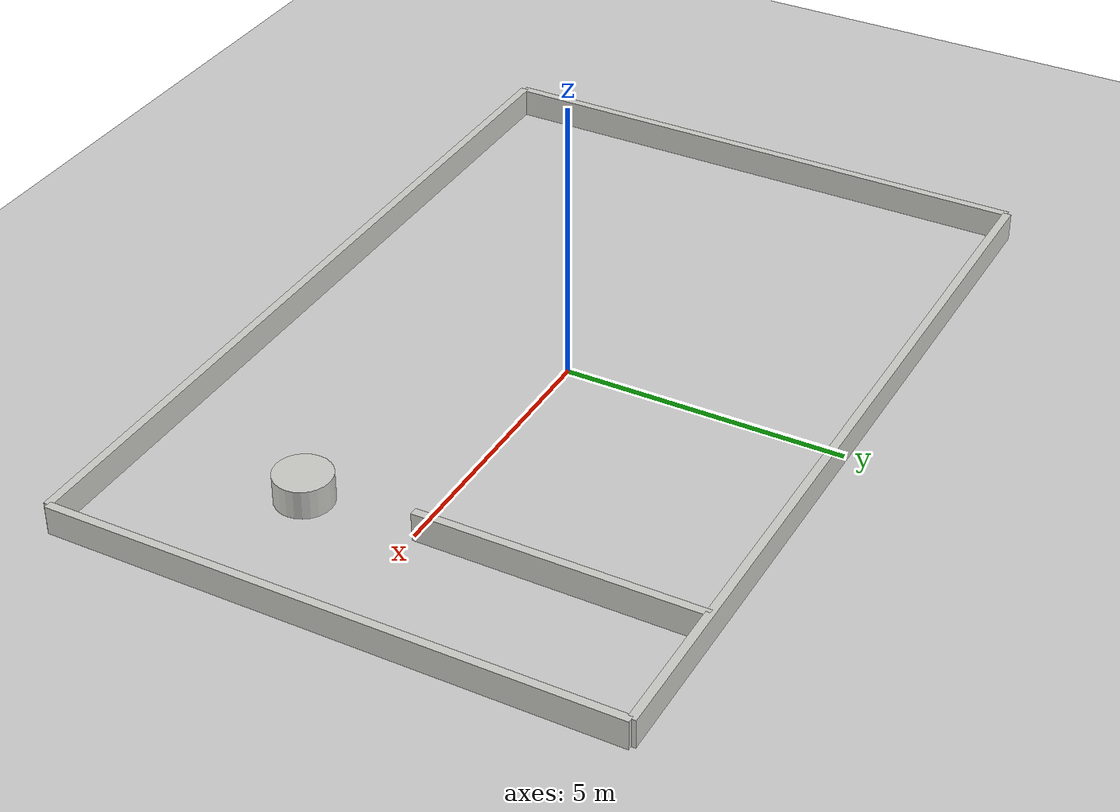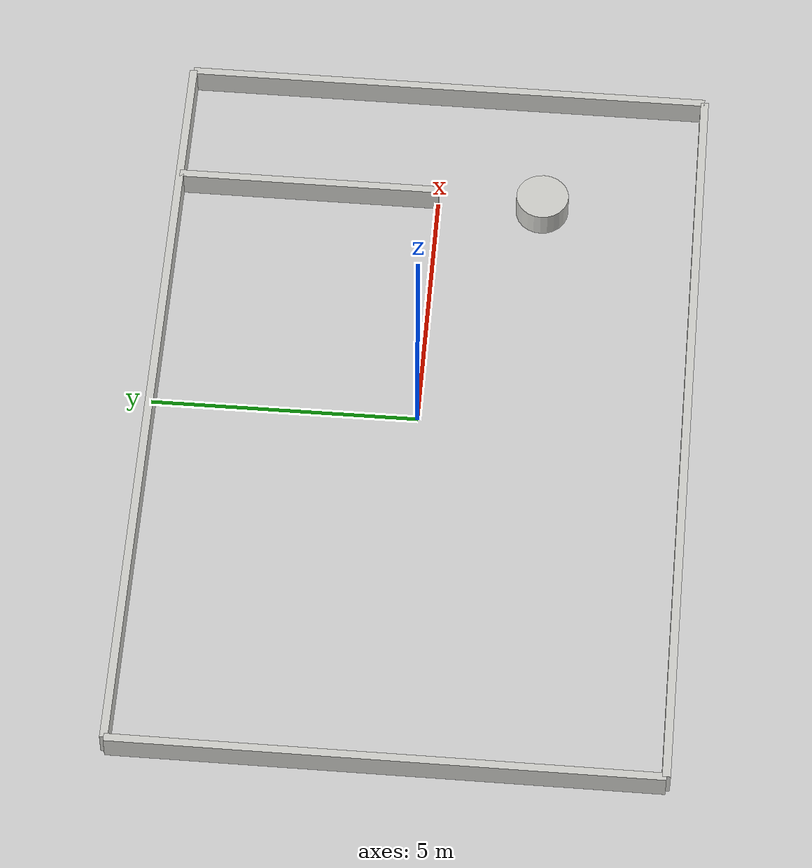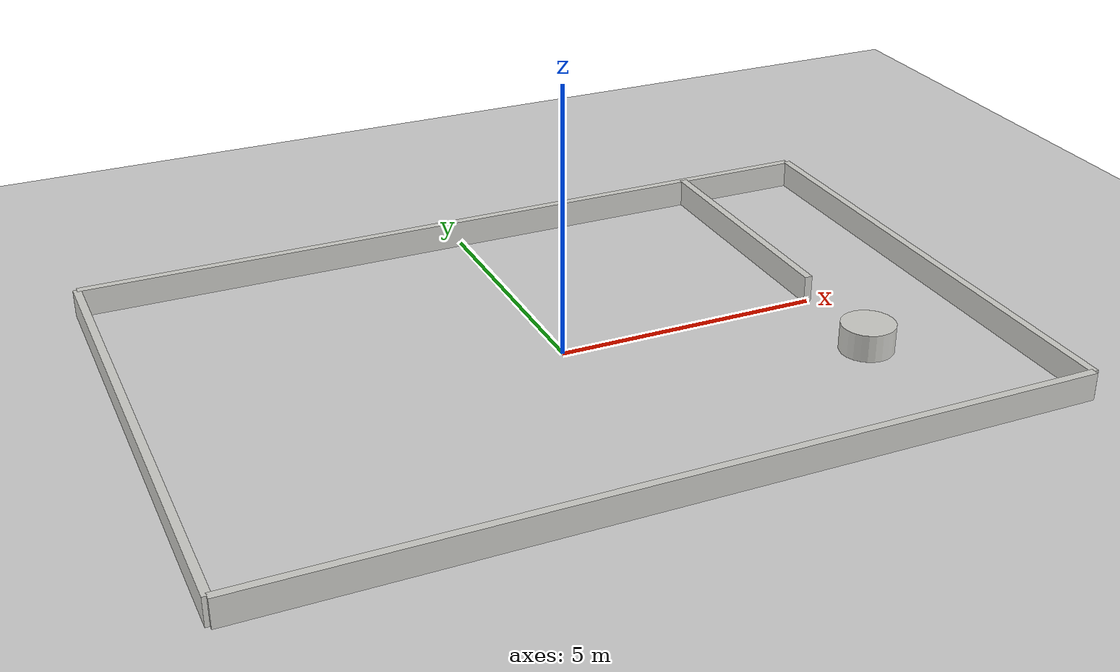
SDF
<?xml version="1.0"?>
<sdf version="1.4">
<world name="rectangle_room">

  <include>
    <uri>model://sun</uri>
  </include>

  <gui>
    <camera name='main'>
      <pose>14.3 6.8 25.7 0 1.05 -2.77</pose>
    </camera>
  </gui>

  <model name="ground_plane">
    <static>true</static>
    <link name="link">
      <collision name="collision">
        <geometry>
          <plane>
            <normal>0 0 1</normal>
            <size>150 150</size>
          </plane>
        </geometry>
        <surface>
          <friction>
            <ode>
              <mu>100</mu>
              <mu2>50</mu2>
            </ode>
          </friction>
        </surface>
      </collision>
      <visual name="visual">
        <cast_shadows>false</cast_shadows>
        <geometry>
          <plane>
            <normal>0 0 1</normal>
            <size>150 150</size>
          </plane>
        </geometry>
        <material>
          <script>
            <uri>file://media/materials/scripts/gazebo.material</uri>
            <name>Gazebo/Grey</name>
          </script>
        </material>
      </visual>
    </link>
  </model>

  <include>
    <uri>model://racecar_description/models/rectangle_room</uri>
    <pose>0 0 0 0 0 0</pose>
  </include>

</world>
</sdf>

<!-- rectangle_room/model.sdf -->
<sdf version='1.4'>
  <model name='rectangle_room'>
    <pose frame=''>0 0 0 0 -0 0</pose>
    <link name='Wall_10'>
      <collision name='Wall_10_Collision'>
        <geometry>
          <box>
            <size>15.0 0.15 1.0</size>
          </box>
        </geometry>
        <pose frame=''>0 0 0 0 -0 0</pose>
      </collision>
      <visual name='Wall_10_Visual'>
        <pose frame=''>0 0 0 0 -0 0</pose>
        <geometry>
          <box>
            <size>15.0 0.15 1.0</size>
          </box>
        </geometry>
        <material>
          <script>
            <uri>file://media/materials/scripts/gazebo.material</uri>
            <name>Gazebo/CeilingTiled</name>
          </script>
          <ambient>1 1 1 1</ambient>
        </material>
      </visual>
      <pose frame=''>0 5 0 0 -0 0</pose>
    </link>
    <link name='Wall_11'>
      <collision name='Wall_11_Collision'>
        <geometry>
          <box>
            <size>15.0 0.15 1.0</size>
          </box>
        </geometry>
        <pose frame=''>0 0 0 0 -0 0</pose>
      </collision>
      <visual name='Wall_11_Visual'>
        <pose frame=''>0 0 0 0 -0 0</pose>
        <geometry>
          <box>
            <size>15.0 0.15 1.0</size>
          </box>
        </geometry>
        <material>
          <script>
            <uri>file://media/materials/scripts/gazebo.material</uri>
            <name>Gazebo/CeilingTiled</name>
          </script>
          <ambient>1 1 1 1</ambient>
        </material>
      </visual>
      <pose frame=''>0 -5 0 0 -0 0</pose>
    </link>
    <link name='Wall_12'>
      <collision name='Wall_12_Collision'>
        <geometry>
          <box>
            <size>0.15 10.0 1.0</size>
          </box>
        </geometry>
        <pose frame=''>0 0 0 0 -0 0</pose>
      </collision>
      <visual name='Wall_12_Visual'>
        <pose frame=''>0 0 0 0 -0 0</pose>
        <geometry>
          <box>
            <size>0.15 10.0 1.0</size>
          </box>
        </geometry>
        <material>
          <script>
            <uri>file://media/materials/scripts/gazebo.material</uri>
            <name>Gazebo/CeilingTiled</name>
          </script>
          <ambient>1 1 1 1</ambient>
        </material>
      </visual>
      <pose frame=''>7.5 0 0 0 -0 0</pose>
    </link>
    <link name='Wall_13'>
      <collision name='Wall_13_Collision'>
        <geometry>
          <box>
            <size>0.15 10.0 1.0</size>
          </box>
        </geometry>
        <pose frame=''>0 0 0 0 -0 0</pose>
      </collision>
      <visual name='Wall_13_Visual'>
        <pose frame=''>0 0 0 0 -0 0</pose>
        <geometry>
          <box>
            <size>0.15 10.0 1.0</size>
          </box>
        </geometry>
        <material>
          <script>
            <uri>file://media/materials/scripts/gazebo.material</uri>
            <name>Gazebo/CeilingTiled</name>
          </script>
          <ambient>1 1 1 1</ambient>
        </material>
      </visual>
      <pose frame=''>-7.5 0 0 0 -0 0</pose>
    </link>

    <link name='Wall_14'>
      <collision name='Wall_14_Collision'>
        <geometry>
          <box>
            <size>0.15 5.0 1.0</size>
          </box>
        </geometry>
        <pose frame=''>0 0 0 0 -0 0</pose>
      </collision>
      <visual name='Wall_14_Visual'>
        <pose frame=''>0 0 0 0 -0 0</pose>
        <geometry>
          <box>
            <size>0.15 5.0 1.0</size>
          </box>
        </geometry>
        <material>
          <script>
            <uri>file://media/materials/scripts/gazebo.material</uri>
            <name>Gazebo/CeilingTiled</name>
          </script>
          <ambient>1 1 1 1</ambient>
        </material>
      </visual>
      <pose frame=''>5.0 2.5 0 0 -0 0</pose>
    </link>

    <link name='Wall_15'>
      <collision name='Wall_15_Collision'>
        <geometry>
	  <cylinder>
	    <radius>0.5</radius>
	    <length>1</length>
	  </cylinder>
        </geometry>
        <pose frame=''>0 0 0 0 -0 0</pose>
      </collision>
      <visual name='Wall_15_Visual'>
        <pose frame=''>0 0 0 0 -0 0</pose>
        <geometry>
	  <cylinder>
	    <radius>0.5</radius>
	    <length>1</length>
	  </cylinder>
        </geometry>
        <material>
          <script>
            <uri>file://media/materials/scripts/gazebo.material</uri>
            <name>Gazebo/CeilingTiled</name>
          </script>
          <ambient>1 1 1 1</ambient>
        </material>
      </visual>
      <pose frame=''>5.0 -2 0 0 -0 0</pose>
    </link>

    <static>1</static>
  </model>
</sdf>
